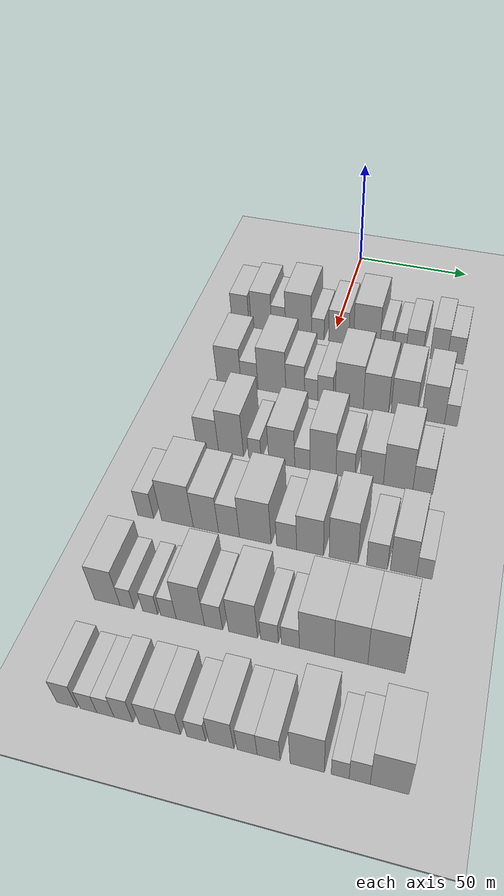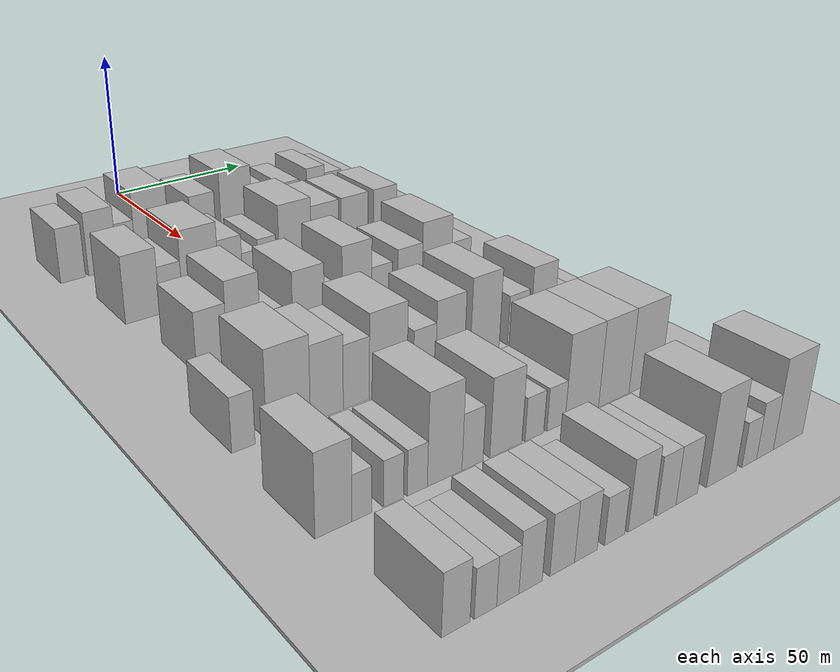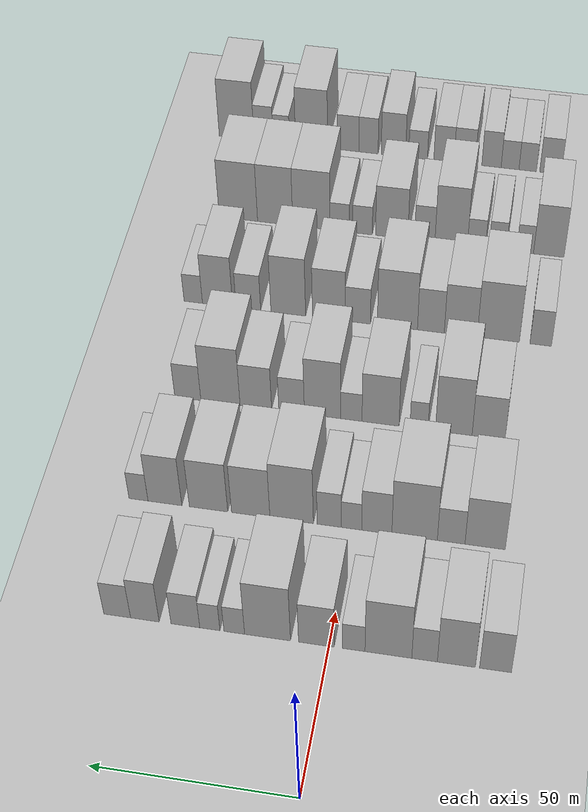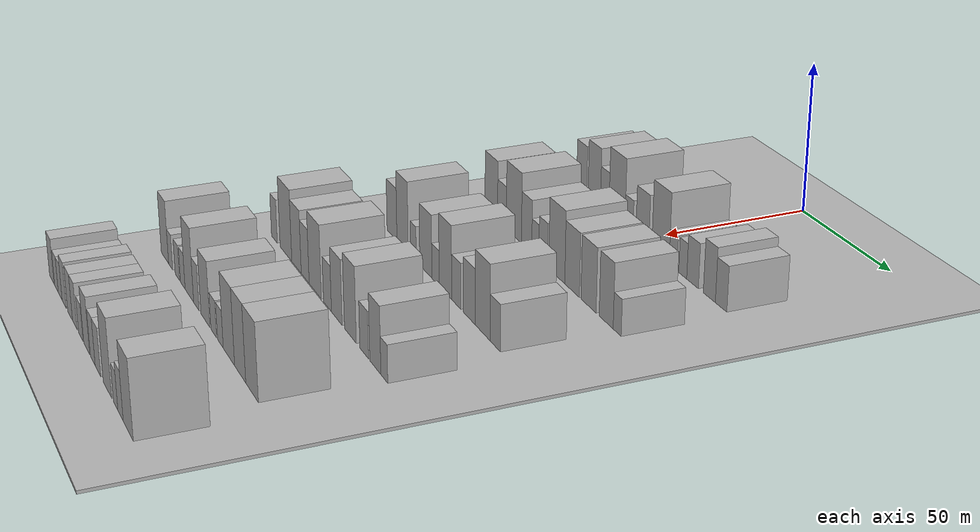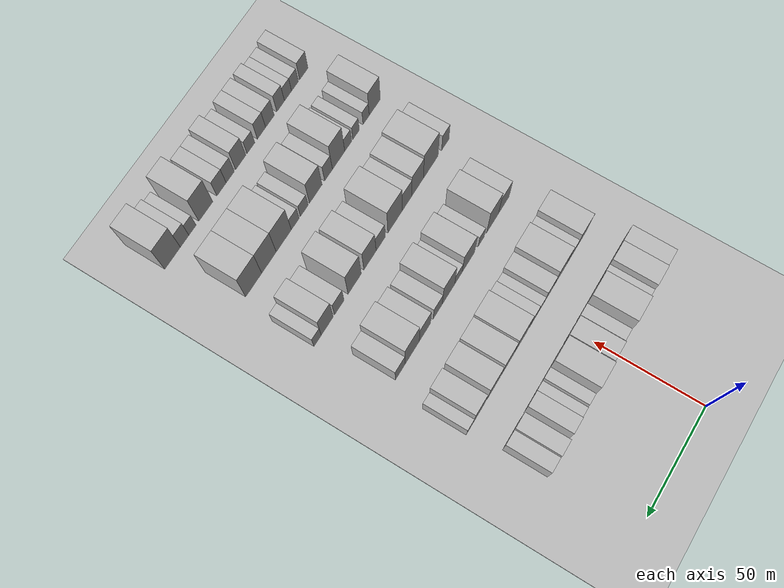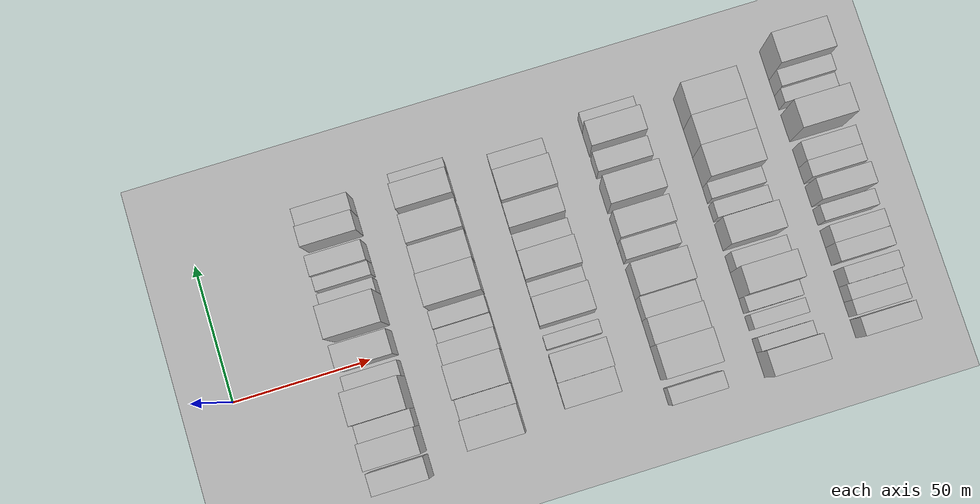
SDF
<sdf version="1.6">
 <world name="default">
  <include><name>ground_plane_1</name><uri>model://HANNAS_ground_plane</uri></include>
  <include>
   <name>ground_plane_2</name>
   <uri>model://HANNAS_ground_plane</uri>
   <pose>100 0 0  0 0 0</pose>
  </include>
  <model name="building_59">
   <static>1</static>
   <pose>50.0000 -40.8970 0 0.000000 0.000000 0.000000</pose>
   <link name="link">
    <pose>0 0 9.00 0 0 0</pose>
    <collision name="collision"><geometry><box><size>20.0000 7.7815 18.0000</size></box></geometry></collision>
    <visual name="visual">
     <cast_shadows>0</cast_shadows>
     <geometry><box><size>20.0000 7.7815 18.0000</size></box></geometry>
     <material>
      <script>
       <uri>model://HANNAS_wall/materials/scripts</uri>
       <uri>model://HANNAS_wall/materials/textures</uri>
       <name>vrc/HANNAS_wall</name>
      </script>
     </material>
    </visual>
   </link>
  </model>
  <model name="building_60">
   <static>1</static>
   <pose>50.0000 -31.3631 0 0.000000 0.000000 0.000000</pose>
   <link name="link">
    <pose>0 0 10.50 0 0 0</pose>
    <collision name="collision"><geometry><box><size>20.0000 9.2864 21.0000</size></box></geometry></collision>
    <visual name="visual">
     <cast_shadows>0</cast_shadows>
     <geometry><box><size>20.0000 9.2864 21.0000</size></box></geometry>
     <material>
      <script>
       <uri>model://HANNAS_wall/materials/scripts</uri>
       <uri>model://HANNAS_wall/materials/textures</uri>
       <name>vrc/HANNAS_wall</name>
      </script>
     </material>
    </visual>
   </link>
  </model>
  <model name="building_61">
   <static>1</static>
   <pose>50.0000 -23.5811 0 0.000000 0.000000 0.000000</pose>
   <link name="link">
    <pose>0 0 7.50 0 0 0</pose>
    <collision name="collision"><geometry><box><size>20.0000 6.2776 15.0000</size></box></geometry></collision>
    <visual name="visual">
     <cast_shadows>0</cast_shadows>
     <geometry><box><size>20.0000 6.2776 15.0000</size></box></geometry>
     <material>
      <script>
       <uri>model://HANNAS_wall/materials/scripts</uri>
       <uri>model://HANNAS_wall/materials/textures</uri>
       <name>vrc/HANNAS_wall</name>
      </script>
     </material>
    </visual>
   </link>
  </model>
  <model name="building_62">
   <static>1</static>
   <pose>50.0000 -14.6792 0 0.000000 0.000000 0.000000</pose>
   <link name="link">
    <pose>0 0 12.00 0 0 0</pose>
    <collision name="collision"><geometry><box><size>20.0000 11.5262 24.0000</size></box></geometry></collision>
    <visual name="visual">
     <cast_shadows>0</cast_shadows>
     <geometry><box><size>20.0000 11.5262 24.0000</size></box></geometry>
     <material>
      <script>
       <uri>model://HANNAS_wall/materials/scripts</uri>
       <uri>model://HANNAS_wall/materials/textures</uri>
       <name>vrc/HANNAS_wall</name>
      </script>
     </material>
    </visual>
   </link>
  </model>
  <model name="building_63">
   <static>1</static>
   <pose>50.0000 -6.1002 0 0.000000 0.000000 0.000000</pose>
   <link name="link">
    <pose>0 0 6.00 0 0 0</pose>
    <collision name="collision"><geometry><box><size>20.0000 5.6318 12.0000</size></box></geometry></collision>
    <visual name="visual">
     <cast_shadows>0</cast_shadows>
     <geometry><box><size>20.0000 5.6318 12.0000</size></box></geometry>
     <material>
      <script>
       <uri>model://HANNAS_wall/materials/scripts</uri>
       <uri>model://HANNAS_wall/materials/textures</uri>
       <name>vrc/HANNAS_wall</name>
      </script>
     </material>
    </visual>
   </link>
  </model>
  <model name="building_64">
   <static>1</static>
   <pose>50.0000 3.1522 0 0.000000 0.000000 0.000000</pose>
   <link name="link">
    <pose>0 0 9.00 0 0 0</pose>
    <collision name="collision"><geometry><box><size>20.0000 8.8730 18.0000</size></box></geometry></collision>
    <visual name="visual">
     <cast_shadows>0</cast_shadows>
     <geometry><box><size>20.0000 8.8730 18.0000</size></box></geometry>
     <material>
      <script>
       <uri>model://HANNAS_wall/materials/scripts</uri>
       <uri>model://HANNAS_wall/materials/textures</uri>
       <name>vrc/HANNAS_wall</name>
      </script>
     </material>
    </visual>
   </link>
  </model>
  <model name="building_65">
   <static>1</static>
   <pose>50.0000 15.3311 0 0.000000 0.000000 0.000000</pose>
   <link name="link">
    <pose>0 0 12.00 0 0 0</pose>
    <collision name="collision"><geometry><box><size>20.0000 11.4847 24.0000</size></box></geometry></collision>
    <visual name="visual">
     <cast_shadows>0</cast_shadows>
     <geometry><box><size>20.0000 11.4847 24.0000</size></box></geometry>
     <material>
      <script>
       <uri>model://HANNAS_wall/materials/scripts</uri>
       <uri>model://HANNAS_wall/materials/textures</uri>
       <name>vrc/HANNAS_wall</name>
      </script>
     </material>
    </visual>
   </link>
  </model>
  <model name="building_66">
   <static>1</static>
   <pose>50.0000 23.6731 0 0.000000 0.000000 0.000000</pose>
   <link name="link">
    <pose>0 0 6.00 0 0 0</pose>
    <collision name="collision"><geometry><box><size>20.0000 5.1993 12.0000</size></box></geometry></collision>
    <visual name="visual">
     <cast_shadows>0</cast_shadows>
     <geometry><box><size>20.0000 5.1993 12.0000</size></box></geometry>
     <material>
      <script>
       <uri>model://HANNAS_wall/materials/scripts</uri>
       <uri>model://HANNAS_wall/materials/textures</uri>
       <name>vrc/HANNAS_wall</name>
      </script>
     </material>
    </visual>
   </link>
  </model>
  <model name="building_67">
   <static>1</static>
   <pose>50.0000 29.8190 0 0.000000 0.000000 0.000000</pose>
   <link name="link">
    <pose>0 0 6.00 0 0 0</pose>
    <collision name="collision"><geometry><box><size>20.0000 5.0927 12.0000</size></box></geometry></collision>
    <visual name="visual">
     <cast_shadows>0</cast_shadows>
     <geometry><box><size>20.0000 5.0927 12.0000</size></box></geometry>
     <material>
      <script>
       <uri>model://HANNAS_wall/materials/scripts</uri>
       <uri>model://HANNAS_wall/materials/textures</uri>
       <name>vrc/HANNAS_wall</name>
      </script>
     </material>
    </visual>
   </link>
  </model>
  <model name="building_68">
   <static>1</static>
   <pose>50.0000 36.0050 0 0.000000 0.000000 0.000000</pose>
   <link name="link">
    <pose>0 0 7.50 0 0 0</pose>
    <collision name="collision"><geometry><box><size>20.0000 7.2793 15.0000</size></box></geometry></collision>
    <visual name="visual">
     <cast_shadows>0</cast_shadows>
     <geometry><box><size>20.0000 7.2793 15.0000</size></box></geometry>
     <material>
      <script>
       <uri>model://HANNAS_wall/materials/scripts</uri>
       <uri>model://HANNAS_wall/materials/textures</uri>
       <name>vrc/HANNAS_wall</name>
      </script>
     </material>
    </visual>
   </link>
  </model>
  <model name="building_69">
   <static>1</static>
   <pose>50.0000 46.2775 0 0.000000 0.000000 0.000000</pose>
   <link name="link">
    <pose>0 0 9.00 0 0 0</pose>
    <collision name="collision"><geometry><box><size>20.0000 7.2655 18.0000</size></box></geometry></collision>
    <visual name="visual">
     <cast_shadows>0</cast_shadows>
     <geometry><box><size>20.0000 7.2655 18.0000</size></box></geometry>
     <material>
      <script>
       <uri>model://HANNAS_wall/materials/scripts</uri>
       <uri>model://HANNAS_wall/materials/textures</uri>
       <name>vrc/HANNAS_wall</name>
      </script>
     </material>
    </visual>
   </link>
  </model>
  <model name="building_70">
   <static>1</static>
   <pose>50.0000 53.3222 0 0.000000 0.000000 0.000000</pose>
   <link name="link">
    <pose>0 0 7.50 0 0 0</pose>
    <collision name="collision"><geometry><box><size>20.0000 6.8239 15.0000</size></box></geometry></collision>
    <visual name="visual">
     <cast_shadows>0</cast_shadows>
     <geometry><box><size>20.0000 6.8239 15.0000</size></box></geometry>
     <material>
      <script>
       <uri>model://HANNAS_wall/materials/scripts</uri>
       <uri>model://HANNAS_wall/materials/textures</uri>
       <name>vrc/HANNAS_wall</name>
      </script>
     </material>
    </visual>
   </link>
  </model>
  <model name="building_185">
   <static>1</static>
   <pose>85.0000 -34.5784 0 0.000000 0.000000 0.000000</pose>
   <link name="link">
    <pose>0 0 10.50 0 0 0</pose>
    <collision name="collision"><geometry><box><size>20.0000 10.3577 21.0000</size></box></geometry></collision>
    <visual name="visual">
     <cast_shadows>0</cast_shadows>
     <geometry><box><size>20.0000 10.3577 21.0000</size></box></geometry>
     <material>
      <script>
       <uri>model://HANNAS_wall/materials/scripts</uri>
       <uri>model://HANNAS_wall/materials/textures</uri>
       <name>vrc/HANNAS_wall</name>
      </script>
     </material>
    </visual>
   </link>
  </model>
  <model name="building_186">
   <static>1</static>
   <pose>85.0000 -25.8314 0 0.000000 0.000000 0.000000</pose>
   <link name="link">
    <pose>0 0 7.50 0 0 0</pose>
    <collision name="collision"><geometry><box><size>20.0000 7.1362 15.0000</size></box></geometry></collision>
    <visual name="visual">
     <cast_shadows>0</cast_shadows>
     <geometry><box><size>20.0000 7.1362 15.0000</size></box></geometry>
     <material>
      <script>
       <uri>model://HANNAS_wall/materials/scripts</uri>
       <uri>model://HANNAS_wall/materials/textures</uri>
       <name>vrc/HANNAS_wall</name>
      </script>
     </material>
    </visual>
   </link>
  </model>
  <model name="building_187">
   <static>1</static>
   <pose>85.0000 -16.3589 0 0.000000 0.000000 0.000000</pose>
   <link name="link">
    <pose>0 0 12.00 0 0 0</pose>
    <collision name="collision"><geometry><box><size>20.0000 11.8087 24.0000</size></box></geometry></collision>
    <visual name="visual">
     <cast_shadows>0</cast_shadows>
     <geometry><box><size>20.0000 11.8087 24.0000</size></box></geometry>
     <material>
      <script>
       <uri>model://HANNAS_wall/materials/scripts</uri>
       <uri>model://HANNAS_wall/materials/textures</uri>
       <name>vrc/HANNAS_wall</name>
      </script>
     </material>
    </visual>
   </link>
  </model>
  <model name="building_188">
   <static>1</static>
   <pose>85.0000 -6.5298 0 0.000000 0.000000 0.000000</pose>
   <link name="link">
    <pose>0 0 9.00 0 0 0</pose>
    <collision name="collision"><geometry><box><size>20.0000 7.8495 18.0000</size></box></geometry></collision>
    <visual name="visual">
     <cast_shadows>0</cast_shadows>
     <geometry><box><size>20.0000 7.8495 18.0000</size></box></geometry>
     <material>
      <script>
       <uri>model://HANNAS_wall/materials/scripts</uri>
       <uri>model://HANNAS_wall/materials/textures</uri>
       <name>vrc/HANNAS_wall</name>
      </script>
     </material>
    </visual>
   </link>
  </model>
  <model name="building_189">
   <static>1</static>
   <pose>85.0000 0.0549 0 0.000000 0.000000 0.000000</pose>
   <link name="link">
    <pose>0 0 6.00 0 0 0</pose>
    <collision name="collision"><geometry><box><size>20.0000 5.3200 12.0000</size></box></geometry></collision>
    <visual name="visual">
     <cast_shadows>0</cast_shadows>
     <geometry><box><size>20.0000 5.3200 12.0000</size></box></geometry>
     <material>
      <script>
       <uri>model://HANNAS_wall/materials/scripts</uri>
       <uri>model://HANNAS_wall/materials/textures</uri>
       <name>vrc/HANNAS_wall</name>
      </script>
     </material>
    </visual>
   </link>
  </model>
  <model name="building_190">
   <static>1</static>
   <pose>85.0000 5.8861 0 0.000000 0.000000 0.000000</pose>
   <link name="link">
    <pose>0 0 7.50 0 0 0</pose>
    <collision name="collision"><geometry><box><size>20.0000 6.3422 15.0000</size></box></geometry></collision>
    <visual name="visual">
     <cast_shadows>0</cast_shadows>
     <geometry><box><size>20.0000 6.3422 15.0000</size></box></geometry>
     <material>
      <script>
       <uri>model://HANNAS_wall/materials/scripts</uri>
       <uri>model://HANNAS_wall/materials/textures</uri>
       <name>vrc/HANNAS_wall</name>
      </script>
     </material>
    </visual>
   </link>
  </model>
  <model name="building_191">
   <static>1</static>
   <pose>85.0000 15.7832 0 0.000000 0.000000 0.000000</pose>
   <link name="link">
    <pose>0 0 12.00 0 0 0</pose>
    <collision name="collision"><geometry><box><size>20.0000 11.4521 24.0000</size></box></geometry></collision>
    <visual name="visual">
     <cast_shadows>0</cast_shadows>
     <geometry><box><size>20.0000 11.4521 24.0000</size></box></geometry>
     <material>
      <script>
       <uri>model://HANNAS_wall/materials/scripts</uri>
       <uri>model://HANNAS_wall/materials/textures</uri>
       <name>vrc/HANNAS_wall</name>
      </script>
     </material>
    </visual>
   </link>
  </model>
  <model name="building_192">
   <static>1</static>
   <pose>85.0000 26.5964 0 0.000000 0.000000 0.000000</pose>
   <link name="link">
    <pose>0 0 10.50 0 0 0</pose>
    <collision name="collision"><geometry><box><size>20.0000 10.1743 21.0000</size></box></geometry></collision>
    <visual name="visual">
     <cast_shadows>0</cast_shadows>
     <geometry><box><size>20.0000 10.1743 21.0000</size></box></geometry>
     <material>
      <script>
       <uri>model://HANNAS_wall/materials/scripts</uri>
       <uri>model://HANNAS_wall/materials/textures</uri>
       <name>vrc/HANNAS_wall</name>
      </script>
     </material>
    </visual>
   </link>
  </model>
  <model name="building_193">
   <static>1</static>
   <pose>85.0000 37.7960 0 0.000000 0.000000 0.000000</pose>
   <link name="link">
    <pose>0 0 10.50 0 0 0</pose>
    <collision name="collision"><geometry><box><size>20.0000 10.2250 21.0000</size></box></geometry></collision>
    <visual name="visual">
     <cast_shadows>0</cast_shadows>
     <geometry><box><size>20.0000 10.2250 21.0000</size></box></geometry>
     <material>
      <script>
       <uri>model://HANNAS_wall/materials/scripts</uri>
       <uri>model://HANNAS_wall/materials/textures</uri>
       <name>vrc/HANNAS_wall</name>
      </script>
     </material>
    </visual>
   </link>
  </model>
  <model name="building_194">
   <static>1</static>
   <pose>85.0000 49.4436 0 0.000000 0.000000 0.000000</pose>
   <link name="link">
    <pose>0 0 10.50 0 0 0</pose>
    <collision name="collision"><geometry><box><size>20.0000 9.0701 21.0000</size></box></geometry></collision>
    <visual name="visual">
     <cast_shadows>0</cast_shadows>
     <geometry><box><size>20.0000 9.0701 21.0000</size></box></geometry>
     <material>
      <script>
       <uri>model://HANNAS_wall/materials/scripts</uri>
       <uri>model://HANNAS_wall/materials/textures</uri>
       <name>vrc/HANNAS_wall</name>
      </script>
     </material>
    </visual>
   </link>
  </model>
  <model name="building_195">
   <static>1</static>
   <pose>85.0000 56.5297 0 0.000000 0.000000 0.000000</pose>
   <link name="link">
    <pose>0 0 6.00 0 0 0</pose>
    <collision name="collision"><geometry><box><size>20.0000 5.1022 12.0000</size></box></geometry></collision>
    <visual name="visual">
     <cast_shadows>0</cast_shadows>
     <geometry><box><size>20.0000 5.1022 12.0000</size></box></geometry>
     <material>
      <script>
       <uri>model://HANNAS_wall/materials/scripts</uri>
       <uri>model://HANNAS_wall/materials/textures</uri>
       <name>vrc/HANNAS_wall</name>
      </script>
     </material>
    </visual>
   </link>
  </model>
  <model name="building_312">
   <static>1</static>
   <pose>120.0000 -31.7007 0 0.000000 0.000000 0.000000</pose>
   <link name="link">
    <pose>0 0 9.00 0 0 0</pose>
    <collision name="collision"><geometry><box><size>20.0000 8.9244 18.0000</size></box></geometry></collision>
    <visual name="visual">
     <cast_shadows>0</cast_shadows>
     <geometry><box><size>20.0000 8.9244 18.0000</size></box></geometry>
     <material>
      <script>
       <uri>model://HANNAS_wall/materials/scripts</uri>
       <uri>model://HANNAS_wall/materials/textures</uri>
       <name>vrc/HANNAS_wall</name>
      </script>
     </material>
    </visual>
   </link>
  </model>
  <model name="building_313">
   <static>1</static>
   <pose>120.0000 -22.2526 0 0.000000 0.000000 0.000000</pose>
   <link name="link">
    <pose>0 0 12.00 0 0 0</pose>
    <collision name="collision"><geometry><box><size>20.0000 9.9718 24.0000</size></box></geometry></collision>
    <visual name="visual">
     <cast_shadows>0</cast_shadows>
     <geometry><box><size>20.0000 9.9718 24.0000</size></box></geometry>
     <material>
      <script>
       <uri>model://HANNAS_wall/materials/scripts</uri>
       <uri>model://HANNAS_wall/materials/textures</uri>
       <name>vrc/HANNAS_wall</name>
      </script>
     </material>
    </visual>
   </link>
  </model>
  <model name="building_314">
   <static>1</static>
   <pose>120.0000 -12.8004 0 0.000000 0.000000 0.000000</pose>
   <link name="link">
    <pose>0 0 6.00 0 0 0</pose>
    <collision name="collision"><geometry><box><size>20.0000 4.9324 12.0000</size></box></geometry></collision>
    <visual name="visual">
     <cast_shadows>0</cast_shadows>
     <geometry><box><size>20.0000 4.9324 12.0000</size></box></geometry>
     <material>
      <script>
       <uri>model://HANNAS_wall/materials/scripts</uri>
       <uri>model://HANNAS_wall/materials/textures</uri>
       <name>vrc/HANNAS_wall</name>
      </script>
     </material>
    </visual>
   </link>
  </model>
  <model name="building_315">
   <static>1</static>
   <pose>120.0000 -2.2618 0 0.000000 0.000000 0.000000</pose>
   <link name="link">
    <pose>0 0 10.50 0 0 0</pose>
    <collision name="collision"><geometry><box><size>20.0000 10.1449 21.0000</size></box></geometry></collision>
    <visual name="visual">
     <cast_shadows>0</cast_shadows>
     <geometry><box><size>20.0000 10.1449 21.0000</size></box></geometry>
     <material>
      <script>
       <uri>model://HANNAS_wall/materials/scripts</uri>
       <uri>model://HANNAS_wall/materials/textures</uri>
       <name>vrc/HANNAS_wall</name>
      </script>
     </material>
    </visual>
   </link>
  </model>
  <model name="building_316">
   <static>1</static>
   <pose>120.0000 5.7700 0 0.000000 0.000000 0.000000</pose>
   <link name="link">
    <pose>0 0 6.00 0 0 0</pose>
    <collision name="collision"><geometry><box><size>20.0000 5.9186 12.0000</size></box></geometry></collision>
    <visual name="visual">
     <cast_shadows>0</cast_shadows>
     <geometry><box><size>20.0000 5.9186 12.0000</size></box></geometry>
     <material>
      <script>
       <uri>model://HANNAS_wall/materials/scripts</uri>
       <uri>model://HANNAS_wall/materials/textures</uri>
       <name>vrc/HANNAS_wall</name>
      </script>
     </material>
    </visual>
   </link>
  </model>
  <model name="building_317">
   <static>1</static>
   <pose>120.0000 13.7190 0 0.000000 0.000000 0.000000</pose>
   <link name="link">
    <pose>0 0 12.00 0 0 0</pose>
    <collision name="collision"><geometry><box><size>20.0000 9.9795 24.0000</size></box></geometry></collision>
    <visual name="visual">
     <cast_shadows>0</cast_shadows>
     <geometry><box><size>20.0000 9.9795 24.0000</size></box></geometry>
     <material>
      <script>
       <uri>model://HANNAS_wall/materials/scripts</uri>
       <uri>model://HANNAS_wall/materials/textures</uri>
       <name>vrc/HANNAS_wall</name>
      </script>
     </material>
    </visual>
   </link>
  </model>
  <model name="building_318">
   <static>1</static>
   <pose>120.0000 22.2581 0 0.000000 0.000000 0.000000</pose>
   <link name="link">
    <pose>0 0 7.50 0 0 0</pose>
    <collision name="collision"><geometry><box><size>20.0000 7.0986 15.0000</size></box></geometry></collision>
    <visual name="visual">
     <cast_shadows>0</cast_shadows>
     <geometry><box><size>20.0000 7.0986 15.0000</size></box></geometry>
     <material>
      <script>
       <uri>model://HANNAS_wall/materials/scripts</uri>
       <uri>model://HANNAS_wall/materials/textures</uri>
       <name>vrc/HANNAS_wall</name>
      </script>
     </material>
    </visual>
   </link>
  </model>
  <model name="building_319">
   <static>1</static>
   <pose>120.0000 32.2067 0 0.000000 0.000000 0.000000</pose>
   <link name="link">
    <pose>0 0 9.00 0 0 0</pose>
    <collision name="collision"><geometry><box><size>20.0000 8.7987 18.0000</size></box></geometry></collision>
    <visual name="visual">
     <cast_shadows>0</cast_shadows>
     <geometry><box><size>20.0000 8.7987 18.0000</size></box></geometry>
     <material>
      <script>
       <uri>model://HANNAS_wall/materials/scripts</uri>
       <uri>model://HANNAS_wall/materials/textures</uri>
       <name>vrc/HANNAS_wall</name>
      </script>
     </material>
    </visual>
   </link>
  </model>
  <model name="building_320">
   <static>1</static>
   <pose>120.0000 42.0911 0 0.000000 0.000000 0.000000</pose>
   <link name="link">
    <pose>0 0 12.00 0 0 0</pose>
    <collision name="collision"><geometry><box><size>20.0000 10.9700 24.0000</size></box></geometry></collision>
    <visual name="visual">
     <cast_shadows>0</cast_shadows>
     <geometry><box><size>20.0000 10.9700 24.0000</size></box></geometry>
     <material>
      <script>
       <uri>model://HANNAS_wall/materials/scripts</uri>
       <uri>model://HANNAS_wall/materials/textures</uri>
       <name>vrc/HANNAS_wall</name>
      </script>
     </material>
    </visual>
   </link>
  </model>
  <model name="building_321">
   <static>1</static>
   <pose>120.0000 51.2400 0 0.000000 0.000000 0.000000</pose>
   <link name="link">
    <pose>0 0 7.50 0 0 0</pose>
    <collision name="collision"><geometry><box><size>20.0000 7.3278 15.0000</size></box></geometry></collision>
    <visual name="visual">
     <cast_shadows>0</cast_shadows>
     <geometry><box><size>20.0000 7.3278 15.0000</size></box></geometry>
     <material>
      <script>
       <uri>model://HANNAS_wall/materials/scripts</uri>
       <uri>model://HANNAS_wall/materials/textures</uri>
       <name>vrc/HANNAS_wall</name>
      </script>
     </material>
    </visual>
   </link>
  </model>
  <model name="building_441">
   <static>1</static>
   <pose>155.0000 -42.7250 0 0.000000 0.000000 0.000000</pose>
   <link name="link">
    <pose>0 0 7.50 0 0 0</pose>
    <collision name="collision"><geometry><box><size>20.0000 6.0779 15.0000</size></box></geometry></collision>
    <visual name="visual">
     <cast_shadows>0</cast_shadows>
     <geometry><box><size>20.0000 6.0779 15.0000</size></box></geometry>
     <material>
      <script>
       <uri>model://HANNAS_wall/materials/scripts</uri>
       <uri>model://HANNAS_wall/materials/textures</uri>
       <name>vrc/HANNAS_wall</name>
      </script>
     </material>
    </visual>
   </link>
  </model>
  <model name="building_442">
   <static>1</static>
   <pose>155.0000 -30.7007 0 0.000000 0.000000 0.000000</pose>
   <link name="link">
    <pose>0 0 12.00 0 0 0</pose>
    <collision name="collision"><geometry><box><size>20.0000 11.9707 24.0000</size></box></geometry></collision>
    <visual name="visual">
     <cast_shadows>0</cast_shadows>
     <geometry><box><size>20.0000 11.9707 24.0000</size></box></geometry>
     <material>
      <script>
       <uri>model://HANNAS_wall/materials/scripts</uri>
       <uri>model://HANNAS_wall/materials/textures</uri>
       <name>vrc/HANNAS_wall</name>
      </script>
     </material>
    </visual>
   </link>
  </model>
  <model name="building_443">
   <static>1</static>
   <pose>155.0000 -20.0189 0 0.000000 0.000000 0.000000</pose>
   <link name="link">
    <pose>0 0 10.50 0 0 0</pose>
    <collision name="collision"><geometry><box><size>20.0000 9.3928 21.0000</size></box></geometry></collision>
    <visual name="visual">
     <cast_shadows>0</cast_shadows>
     <geometry><box><size>20.0000 9.3928 21.0000</size></box></geometry>
     <material>
      <script>
       <uri>model://HANNAS_wall/materials/scripts</uri>
       <uri>model://HANNAS_wall/materials/textures</uri>
       <name>vrc/HANNAS_wall</name>
      </script>
     </material>
    </visual>
   </link>
  </model>
  <model name="building_444">
   <static>1</static>
   <pose>155.0000 -11.4806 0 0.000000 0.000000 0.000000</pose>
   <link name="link">
    <pose>0 0 9.00 0 0 0</pose>
    <collision name="collision"><geometry><box><size>20.0000 7.6839 18.0000</size></box></geometry></collision>
    <visual name="visual">
     <cast_shadows>0</cast_shadows>
     <geometry><box><size>20.0000 7.6839 18.0000</size></box></geometry>
     <material>
      <script>
       <uri>model://HANNAS_wall/materials/scripts</uri>
       <uri>model://HANNAS_wall/materials/textures</uri>
       <name>vrc/HANNAS_wall</name>
      </script>
     </material>
    </visual>
   </link>
  </model>
  <model name="building_445">
   <static>1</static>
   <pose>155.0000 -1.8790 0 0.000000 0.000000 0.000000</pose>
   <link name="link">
    <pose>0 0 12.00 0 0 0</pose>
    <collision name="collision"><geometry><box><size>20.0000 11.5193 24.0000</size></box></geometry></collision>
    <visual name="visual">
     <cast_shadows>0</cast_shadows>
     <geometry><box><size>20.0000 11.5193 24.0000</size></box></geometry>
     <material>
      <script>
       <uri>model://HANNAS_wall/materials/scripts</uri>
       <uri>model://HANNAS_wall/materials/textures</uri>
       <name>vrc/HANNAS_wall</name>
      </script>
     </material>
    </visual>
   </link>
  </model>
  <model name="building_446">
   <static>1</static>
   <pose>155.0000 9.4893 0 0.000000 0.000000 0.000000</pose>
   <link name="link">
    <pose>0 0 7.50 0 0 0</pose>
    <collision name="collision"><geometry><box><size>20.0000 7.2174 15.0000</size></box></geometry></collision>
    <visual name="visual">
     <cast_shadows>0</cast_shadows>
     <geometry><box><size>20.0000 7.2174 15.0000</size></box></geometry>
     <material>
      <script>
       <uri>model://HANNAS_wall/materials/scripts</uri>
       <uri>model://HANNAS_wall/materials/textures</uri>
       <name>vrc/HANNAS_wall</name>
      </script>
     </material>
    </visual>
   </link>
  </model>
  <model name="building_447">
   <static>1</static>
   <pose>155.0000 17.8713 0 0.000000 0.000000 0.000000</pose>
   <link name="link">
    <pose>0 0 10.50 0 0 0</pose>
    <collision name="collision"><geometry><box><size>20.0000 9.5465 21.0000</size></box></geometry></collision>
    <visual name="visual">
     <cast_shadows>0</cast_shadows>
     <geometry><box><size>20.0000 9.5465 21.0000</size></box></geometry>
     <material>
      <script>
       <uri>model://HANNAS_wall/materials/scripts</uri>
       <uri>model://HANNAS_wall/materials/textures</uri>
       <name>vrc/HANNAS_wall</name>
      </script>
     </material>
    </visual>
   </link>
  </model>
  <model name="building_448">
   <static>1</static>
   <pose>155.0000 29.7060 0 0.000000 0.000000 0.000000</pose>
   <link name="link">
    <pose>0 0 12.00 0 0 0</pose>
    <collision name="collision"><geometry><box><size>20.0000 10.1230 24.0000</size></box></geometry></collision>
    <visual name="visual">
     <cast_shadows>0</cast_shadows>
     <geometry><box><size>20.0000 10.1230 24.0000</size></box></geometry>
     <material>
      <script>
       <uri>model://HANNAS_wall/materials/scripts</uri>
       <uri>model://HANNAS_wall/materials/textures</uri>
       <name>vrc/HANNAS_wall</name>
      </script>
     </material>
    </visual>
   </link>
  </model>
  <model name="building_449">
   <static>1</static>
   <pose>155.0000 41.3713 0 0.000000 0.000000 0.000000</pose>
   <link name="link">
    <pose>0 0 7.50 0 0 0</pose>
    <collision name="collision"><geometry><box><size>20.0000 7.2075 15.0000</size></box></geometry></collision>
    <visual name="visual">
     <cast_shadows>0</cast_shadows>
     <geometry><box><size>20.0000 7.2075 15.0000</size></box></geometry>
     <material>
      <script>
       <uri>model://HANNAS_wall/materials/scripts</uri>
       <uri>model://HANNAS_wall/materials/textures</uri>
       <name>vrc/HANNAS_wall</name>
      </script>
     </material>
    </visual>
   </link>
  </model>
  <model name="building_450">
   <static>1</static>
   <pose>155.0000 50.4189 0 0.000000 0.000000 0.000000</pose>
   <link name="link">
    <pose>0 0 10.50 0 0 0</pose>
    <collision name="collision"><geometry><box><size>20.0000 8.8878 21.0000</size></box></geometry></collision>
    <visual name="visual">
     <cast_shadows>0</cast_shadows>
     <geometry><box><size>20.0000 8.8878 21.0000</size></box></geometry>
     <material>
      <script>
       <uri>model://HANNAS_wall/materials/scripts</uri>
       <uri>model://HANNAS_wall/materials/textures</uri>
       <name>vrc/HANNAS_wall</name>
      </script>
     </material>
    </visual>
   </link>
  </model>
  <model name="building_451">
   <static>1</static>
   <pose>155.0000 57.5771 0 0.000000 0.000000 0.000000</pose>
   <link name="link">
    <pose>0 0 6.00 0 0 0</pose>
    <collision name="collision"><geometry><box><size>20.0000 5.4286 12.0000</size></box></geometry></collision>
    <visual name="visual">
     <cast_shadows>0</cast_shadows>
     <geometry><box><size>20.0000 5.4286 12.0000</size></box></geometry>
     <material>
      <script>
       <uri>model://HANNAS_wall/materials/scripts</uri>
       <uri>model://HANNAS_wall/materials/textures</uri>
       <name>vrc/HANNAS_wall</name>
      </script>
     </material>
    </visual>
   </link>
  </model>
  <model name="building_571">
   <static>1</static>
   <pose>190.0000 -42.0482 0 0.000000 0.000000 0.000000</pose>
   <link name="link">
    <pose>0 0 10.50 0 0 0</pose>
    <collision name="collision"><geometry><box><size>20.0000 9.0323 21.0000</size></box></geometry></collision>
    <visual name="visual">
     <cast_shadows>0</cast_shadows>
     <geometry><box><size>20.0000 9.0323 21.0000</size></box></geometry>
     <material>
      <script>
       <uri>model://HANNAS_wall/materials/scripts</uri>
       <uri>model://HANNAS_wall/materials/textures</uri>
       <name>vrc/HANNAS_wall</name>
      </script>
     </material>
    </visual>
   </link>
  </model>
  <model name="building_572">
   <static>1</static>
   <pose>190.0000 -35.0366 0 0.000000 0.000000 0.000000</pose>
   <link name="link">
    <pose>0 0 6.00 0 0 0</pose>
    <collision name="collision"><geometry><box><size>20.0000 4.9908 12.0000</size></box></geometry></collision>
    <visual name="visual">
     <cast_shadows>0</cast_shadows>
     <geometry><box><size>20.0000 4.9908 12.0000</size></box></geometry>
     <material>
      <script>
       <uri>model://HANNAS_wall/materials/scripts</uri>
       <uri>model://HANNAS_wall/materials/textures</uri>
       <name>vrc/HANNAS_wall</name>
      </script>
     </material>
    </visual>
   </link>
  </model>
  <model name="building_573">
   <static>1</static>
   <pose>190.0000 -26.9249 0 0.000000 0.000000 0.000000</pose>
   <link name="link">
    <pose>0 0 6.00 0 0 0</pose>
    <collision name="collision"><geometry><box><size>20.0000 5.2327 12.0000</size></box></geometry></collision>
    <visual name="visual">
     <cast_shadows>0</cast_shadows>
     <geometry><box><size>20.0000 5.2327 12.0000</size></box></geometry>
     <material>
      <script>
       <uri>model://HANNAS_wall/materials/scripts</uri>
       <uri>model://HANNAS_wall/materials/textures</uri>
       <name>vrc/HANNAS_wall</name>
      </script>
     </material>
    </visual>
   </link>
  </model>
  <model name="building_574">
   <static>1</static>
   <pose>190.0000 -20.5996 0 0.000000 0.000000 0.000000</pose>
   <link name="link">
    <pose>0 0 6.00 0 0 0</pose>
    <collision name="collision"><geometry><box><size>20.0000 5.4179 12.0000</size></box></geometry></collision>
    <visual name="visual">
     <cast_shadows>0</cast_shadows>
     <geometry><box><size>20.0000 5.4179 12.0000</size></box></geometry>
     <material>
      <script>
       <uri>model://HANNAS_wall/materials/scripts</uri>
       <uri>model://HANNAS_wall/materials/textures</uri>
       <name>vrc/HANNAS_wall</name>
      </script>
     </material>
    </visual>
   </link>
  </model>
  <model name="building_575">
   <static>1</static>
   <pose>190.0000 -13.0280 0 0.000000 0.000000 0.000000</pose>
   <link name="link">
    <pose>0 0 12.00 0 0 0</pose>
    <collision name="collision"><geometry><box><size>20.0000 9.7252 24.0000</size></box></geometry></collision>
    <visual name="visual">
     <cast_shadows>0</cast_shadows>
     <geometry><box><size>20.0000 9.7252 24.0000</size></box></geometry>
     <material>
      <script>
       <uri>model://HANNAS_wall/materials/scripts</uri>
       <uri>model://HANNAS_wall/materials/textures</uri>
       <name>vrc/HANNAS_wall</name>
      </script>
     </material>
    </visual>
   </link>
  </model>
  <model name="building_576">
   <static>1</static>
   <pose>190.0000 -5.1031 0 0.000000 0.000000 0.000000</pose>
   <link name="link">
    <pose>0 0 7.50 0 0 0</pose>
    <collision name="collision"><geometry><box><size>20.0000 6.1247 15.0000</size></box></geometry></collision>
    <visual name="visual">
     <cast_shadows>0</cast_shadows>
     <geometry><box><size>20.0000 6.1247 15.0000</size></box></geometry>
     <material>
      <script>
       <uri>model://HANNAS_wall/materials/scripts</uri>
       <uri>model://HANNAS_wall/materials/textures</uri>
       <name>vrc/HANNAS_wall</name>
      </script>
     </material>
    </visual>
   </link>
  </model>
  <model name="building_577">
   <static>1</static>
   <pose>190.0000 4.8285 0 0.000000 0.000000 0.000000</pose>
   <link name="link">
    <pose>0 0 10.50 0 0 0</pose>
    <collision name="collision"><geometry><box><size>20.0000 9.7385 21.0000</size></box></geometry></collision>
    <visual name="visual">
     <cast_shadows>0</cast_shadows>
     <geometry><box><size>20.0000 9.7385 21.0000</size></box></geometry>
     <material>
      <script>
       <uri>model://HANNAS_wall/materials/scripts</uri>
       <uri>model://HANNAS_wall/materials/textures</uri>
       <name>vrc/HANNAS_wall</name>
      </script>
     </material>
    </visual>
   </link>
  </model>
  <model name="building_578">
   <static>1</static>
   <pose>190.0000 13.6571 0 0.000000 0.000000 0.000000</pose>
   <link name="link">
    <pose>0 0 6.00 0 0 0</pose>
    <collision name="collision"><geometry><box><size>20.0000 5.9185 12.0000</size></box></geometry></collision>
    <visual name="visual">
     <cast_shadows>0</cast_shadows>
     <geometry><box><size>20.0000 5.9185 12.0000</size></box></geometry>
     <material>
      <script>
       <uri>model://HANNAS_wall/materials/scripts</uri>
       <uri>model://HANNAS_wall/materials/textures</uri>
       <name>vrc/HANNAS_wall</name>
      </script>
     </material>
    </visual>
   </link>
  </model>
  <model name="building_579">
   <static>1</static>
   <pose>190.0000 20.5650 0 0.000000 0.000000 0.000000</pose>
   <link name="link">
    <pose>0 0 6.00 0 0 0</pose>
    <collision name="collision"><geometry><box><size>20.0000 5.8973 12.0000</size></box></geometry></collision>
    <visual name="visual">
     <cast_shadows>0</cast_shadows>
     <geometry><box><size>20.0000 5.8973 12.0000</size></box></geometry>
     <material>
      <script>
       <uri>model://HANNAS_wall/materials/scripts</uri>
       <uri>model://HANNAS_wall/materials/textures</uri>
       <name>vrc/HANNAS_wall</name>
      </script>
     </material>
    </visual>
   </link>
  </model>
  <model name="building_580">
   <static>1</static>
   <pose>190.0000 29.1833 0 0.000000 0.000000 0.000000</pose>
   <link name="link">
    <pose>0 0 12.00 0 0 0</pose>
    <collision name="collision"><geometry><box><size>20.0000 11.3393 24.0000</size></box></geometry></collision>
    <visual name="visual">
     <cast_shadows>0</cast_shadows>
     <geometry><box><size>20.0000 11.3393 24.0000</size></box></geometry>
     <material>
      <script>
       <uri>model://HANNAS_wall/materials/scripts</uri>
       <uri>model://HANNAS_wall/materials/textures</uri>
       <name>vrc/HANNAS_wall</name>
      </script>
     </material>
    </visual>
   </link>
  </model>
  <model name="building_581">
   <static>1</static>
   <pose>190.0000 40.2355 0 0.000000 0.000000 0.000000</pose>
   <link name="link">
    <pose>0 0 12.00 0 0 0</pose>
    <collision name="collision"><geometry><box><size>20.0000 10.7651 24.0000</size></box></geometry></collision>
    <visual name="visual">
     <cast_shadows>0</cast_shadows>
     <geometry><box><size>20.0000 10.7651 24.0000</size></box></geometry>
     <material>
      <script>
       <uri>model://HANNAS_wall/materials/scripts</uri>
       <uri>model://HANNAS_wall/materials/textures</uri>
       <name>vrc/HANNAS_wall</name>
      </script>
     </material>
    </visual>
   </link>
  </model>
  <model name="building_582">
   <static>1</static>
   <pose>190.0000 51.5045 0 0.000000 0.000000 0.000000</pose>
   <link name="link">
    <pose>0 0 12.00 0 0 0</pose>
    <collision name="collision"><geometry><box><size>20.0000 11.7728 24.0000</size></box></geometry></collision>
    <visual name="visual">
     <cast_shadows>0</cast_shadows>
     <geometry><box><size>20.0000 11.7728 24.0000</size></box></geometry>
     <material>
      <script>
       <uri>model://HANNAS_wall/materials/scripts</uri>
       <uri>model://HANNAS_wall/materials/textures</uri>
       <name>vrc/HANNAS_wall</name>
      </script>
     </material>
    </visual>
   </link>
  </model>
  <model name="building_698">
   <static>1</static>
   <pose>225.0000 -39.6515 0 0.000000 0.000000 0.000000</pose>
   <link name="link">
    <pose>0 0 7.50 0 0 0</pose>
    <collision name="collision"><geometry><box><size>20.0000 6.6676 15.0000</size></box></geometry></collision>
    <visual name="visual">
     <cast_shadows>0</cast_shadows>
     <geometry><box><size>20.0000 6.6676 15.0000</size></box></geometry>
     <material>
      <script>
       <uri>model://HANNAS_wall/materials/scripts</uri>
       <uri>model://HANNAS_wall/materials/textures</uri>
       <name>vrc/HANNAS_wall</name>
      </script>
     </material>
    </visual>
   </link>
  </model>
  <model name="building_699">
   <static>1</static>
   <pose>225.0000 -32.6127 0 0.000000 0.000000 0.000000</pose>
   <link name="link">
    <pose>0 0 6.00 0 0 0</pose>
    <collision name="collision"><geometry><box><size>20.0000 5.4101 12.0000</size></box></geometry></collision>
    <visual name="visual">
     <cast_shadows>0</cast_shadows>
     <geometry><box><size>20.0000 5.4101 12.0000</size></box></geometry>
     <material>
      <script>
       <uri>model://HANNAS_wall/materials/scripts</uri>
       <uri>model://HANNAS_wall/materials/textures</uri>
       <name>vrc/HANNAS_wall</name>
      </script>
     </material>
    </visual>
   </link>
  </model>
  <model name="building_700">
   <static>1</static>
   <pose>225.0000 -27.1290 0 0.000000 0.000000 0.000000</pose>
   <link name="link">
    <pose>0 0 6.00 0 0 0</pose>
    <collision name="collision"><geometry><box><size>20.0000 5.5574 12.0000</size></box></geometry></collision>
    <visual name="visual">
     <cast_shadows>0</cast_shadows>
     <geometry><box><size>20.0000 5.5574 12.0000</size></box></geometry>
     <material>
      <script>
       <uri>model://HANNAS_wall/materials/scripts</uri>
       <uri>model://HANNAS_wall/materials/textures</uri>
       <name>vrc/HANNAS_wall</name>
      </script>
     </material>
    </visual>
   </link>
  </model>
  <model name="building_701">
   <static>1</static>
   <pose>225.0000 -21.3437 0 0.000000 0.000000 0.000000</pose>
   <link name="link">
    <pose>0 0 7.50 0 0 0</pose>
    <collision name="collision"><geometry><box><size>20.0000 6.0131 15.0000</size></box></geometry></collision>
    <visual name="visual">
     <cast_shadows>0</cast_shadows>
     <geometry><box><size>20.0000 6.0131 15.0000</size></box></geometry>
     <material>
      <script>
       <uri>model://HANNAS_wall/materials/scripts</uri>
       <uri>model://HANNAS_wall/materials/textures</uri>
       <name>vrc/HANNAS_wall</name>
      </script>
     </material>
    </visual>
   </link>
  </model>
  <model name="building_702">
   <static>1</static>
   <pose>225.0000 -12.9962 0 0.000000 0.000000 0.000000</pose>
   <link name="link">
    <pose>0 0 7.50 0 0 0</pose>
    <collision name="collision"><geometry><box><size>20.0000 6.6819 15.0000</size></box></geometry></collision>
    <visual name="visual">
     <cast_shadows>0</cast_shadows>
     <geometry><box><size>20.0000 6.6819 15.0000</size></box></geometry>
     <material>
      <script>
       <uri>model://HANNAS_wall/materials/scripts</uri>
       <uri>model://HANNAS_wall/materials/textures</uri>
       <name>vrc/HANNAS_wall</name>
      </script>
     </material>
    </visual>
   </link>
  </model>
  <model name="building_703">
   <static>1</static>
   <pose>225.0000 -6.4908 0 0.000000 0.000000 0.000000</pose>
   <link name="link">
    <pose>0 0 7.50 0 0 0</pose>
    <collision name="collision"><geometry><box><size>20.0000 6.3287 15.0000</size></box></geometry></collision>
    <visual name="visual">
     <cast_shadows>0</cast_shadows>
     <geometry><box><size>20.0000 6.3287 15.0000</size></box></geometry>
     <material>
      <script>
       <uri>model://HANNAS_wall/materials/scripts</uri>
       <uri>model://HANNAS_wall/materials/textures</uri>
       <name>vrc/HANNAS_wall</name>
      </script>
     </material>
    </visual>
   </link>
  </model>
  <model name="building_704">
   <static>1</static>
   <pose>225.0000 1.6127 0 0.000000 0.000000 0.000000</pose>
   <link name="link">
    <pose>0 0 6.00 0 0 0</pose>
    <collision name="collision"><geometry><box><size>20.0000 5.8784 12.0000</size></box></geometry></collision>
    <visual name="visual">
     <cast_shadows>0</cast_shadows>
     <geometry><box><size>20.0000 5.8784 12.0000</size></box></geometry>
     <material>
      <script>
       <uri>model://HANNAS_wall/materials/scripts</uri>
       <uri>model://HANNAS_wall/materials/textures</uri>
       <name>vrc/HANNAS_wall</name>
      </script>
     </material>
    </visual>
   </link>
  </model>
  <model name="building_705">
   <static>1</static>
   <pose>225.0000 9.3848 0 0.000000 0.000000 0.000000</pose>
   <link name="link">
    <pose>0 0 9.00 0 0 0</pose>
    <collision name="collision"><geometry><box><size>20.0000 7.6658 18.0000</size></box></geometry></collision>
    <visual name="visual">
     <cast_shadows>0</cast_shadows>
     <geometry><box><size>20.0000 7.6658 18.0000</size></box></geometry>
     <material>
      <script>
       <uri>model://HANNAS_wall/materials/scripts</uri>
       <uri>model://HANNAS_wall/materials/textures</uri>
       <name>vrc/HANNAS_wall</name>
      </script>
     </material>
    </visual>
   </link>
  </model>
  <model name="building_706">
   <static>1</static>
   <pose>225.0000 17.2395 0 0.000000 0.000000 0.000000</pose>
   <link name="link">
    <pose>0 0 7.50 0 0 0</pose>
    <collision name="collision"><geometry><box><size>20.0000 6.0435 15.0000</size></box></geometry></collision>
    <visual name="visual">
     <cast_shadows>0</cast_shadows>
     <geometry><box><size>20.0000 6.0435 15.0000</size></box></geometry>
     <material>
      <script>
       <uri>model://HANNAS_wall/materials/scripts</uri>
       <uri>model://HANNAS_wall/materials/textures</uri>
       <name>vrc/HANNAS_wall</name>
      </script>
     </material>
    </visual>
   </link>
  </model>
  <model name="building_707">
   <static>1</static>
   <pose>225.0000 23.7336 0 0.000000 0.000000 0.000000</pose>
   <link name="link">
    <pose>0 0 7.50 0 0 0</pose>
    <collision name="collision"><geometry><box><size>20.0000 6.9448 15.0000</size></box></geometry></collision>
    <visual name="visual">
     <cast_shadows>0</cast_shadows>
     <geometry><box><size>20.0000 6.9448 15.0000</size></box></geometry>
     <material>
      <script>
       <uri>model://HANNAS_wall/materials/scripts</uri>
       <uri>model://HANNAS_wall/materials/textures</uri>
       <name>vrc/HANNAS_wall</name>
      </script>
     </material>
    </visual>
   </link>
  </model>
  <model name="building_708">
   <static>1</static>
   <pose>225.0000 35.2999 0 0.000000 0.000000 0.000000</pose>
   <link name="link">
    <pose>0 0 12.00 0 0 0</pose>
    <collision name="collision"><geometry><box><size>20.0000 10.1877 24.0000</size></box></geometry></collision>
    <visual name="visual">
     <cast_shadows>0</cast_shadows>
     <geometry><box><size>20.0000 10.1877 24.0000</size></box></geometry>
     <material>
      <script>
       <uri>model://HANNAS_wall/materials/scripts</uri>
       <uri>model://HANNAS_wall/materials/textures</uri>
       <name>vrc/HANNAS_wall</name>
      </script>
     </material>
    </visual>
   </link>
  </model>
  <model name="building_709">
   <static>1</static>
   <pose>225.0000 45.0118 0 0.000000 0.000000 0.000000</pose>
   <link name="link">
    <pose>0 0 6.00 0 0 0</pose>
    <collision name="collision"><geometry><box><size>20.0000 5.2361 12.0000</size></box></geometry></collision>
    <visual name="visual">
     <cast_shadows>0</cast_shadows>
     <geometry><box><size>20.0000 5.2361 12.0000</size></box></geometry>
     <material>
      <script>
       <uri>model://HANNAS_wall/materials/scripts</uri>
       <uri>model://HANNAS_wall/materials/textures</uri>
       <name>vrc/HANNAS_wall</name>
      </script>
     </material>
    </visual>
   </link>
  </model>
  <model name="building_710">
   <static>1</static>
   <pose>225.0000 50.6832 0 0.000000 0.000000 0.000000</pose>
   <link name="link">
    <pose>0 0 7.50 0 0 0</pose>
    <collision name="collision"><geometry><box><size>20.0000 6.1067 15.0000</size></box></geometry></collision>
    <visual name="visual">
     <cast_shadows>0</cast_shadows>
     <geometry><box><size>20.0000 6.1067 15.0000</size></box></geometry>
     <material>
      <script>
       <uri>model://HANNAS_wall/materials/scripts</uri>
       <uri>model://HANNAS_wall/materials/textures</uri>
       <name>vrc/HANNAS_wall</name>
      </script>
     </material>
    </visual>
   </link>
  </model>
  <model name="building_711">
   <static>1</static>
   <pose>225.0000 59.3035 0 0.000000 0.000000 0.000000</pose>
   <link name="link">
    <pose>0 0 12.00 0 0 0</pose>
    <collision name="collision"><geometry><box><size>20.0000 11.1339 24.0000</size></box></geometry></collision>
    <visual name="visual">
     <cast_shadows>0</cast_shadows>
     <geometry><box><size>20.0000 11.1339 24.0000</size></box></geometry>
     <material>
      <script>
       <uri>model://HANNAS_wall/materials/scripts</uri>
       <uri>model://HANNAS_wall/materials/textures</uri>
       <name>vrc/HANNAS_wall</name>
      </script>
     </material>
    </visual>
   </link>
  </model>
 </world>
</sdf>
